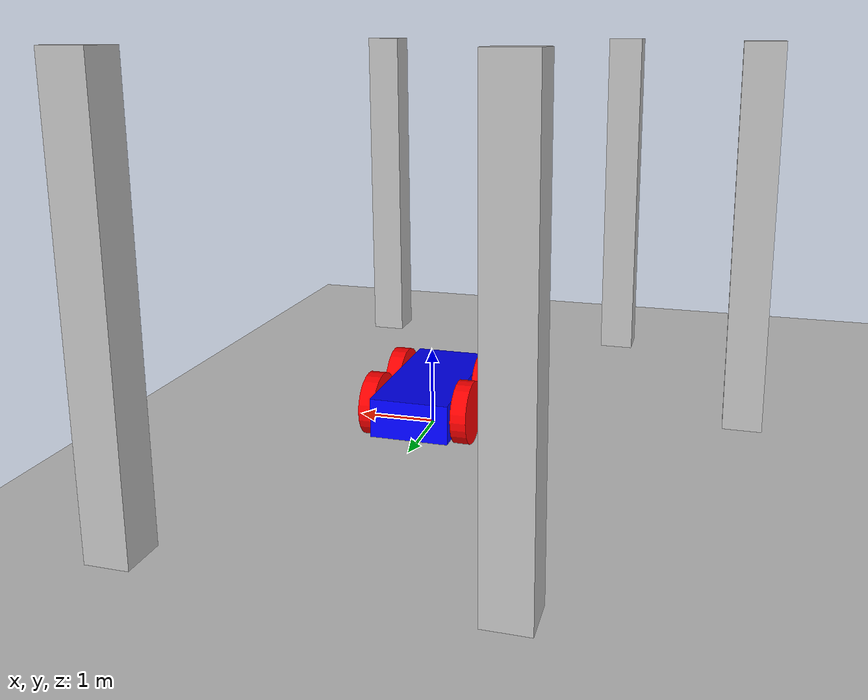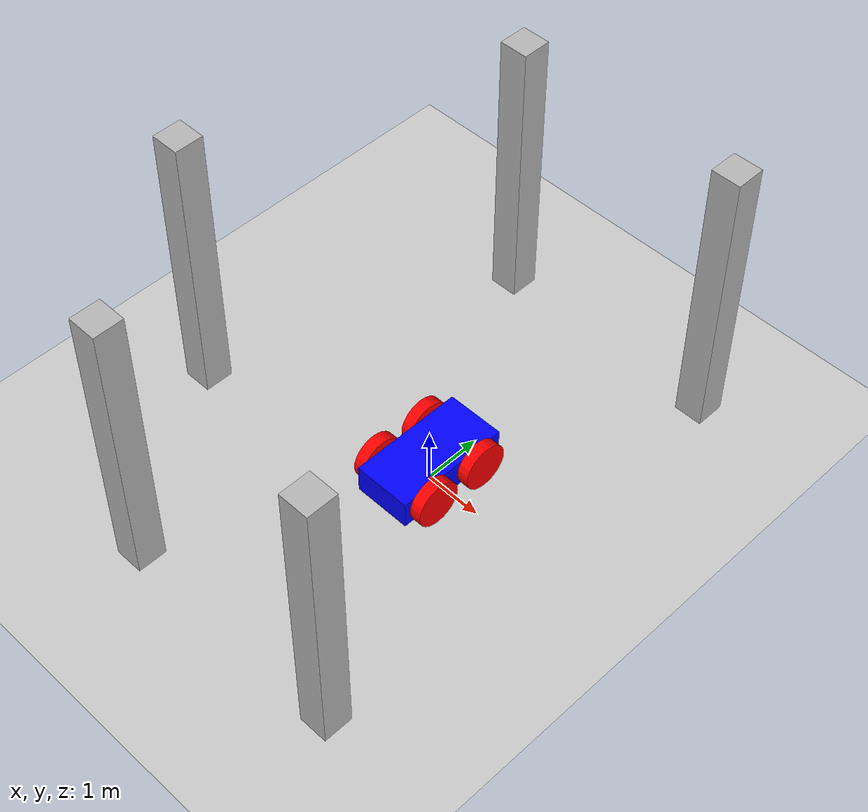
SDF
<?xml version="1.0" ?>
<sdf version="1.8">
    <world name="car_world">
        <physics name="1ms" type="ignored">
            <max_step_size>0.001</max_step_size>
            <real_time_factor>1.0</real_time_factor>
        </physics>
        <plugin
            filename="libignition-gazebo-physics-system.so"
            name="ignition::gazebo::systems::Physics">
        </plugin>
        <plugin
            filename="libignition-gazebo-user-commands-system.so"
            name="ignition::gazebo::systems::UserCommands">
        </plugin>
        <plugin
            filename="libignition-gazebo-scene-broadcaster-system.so"
            name="ignition::gazebo::systems::SceneBroadcaster">
        </plugin>
        <plugin
            filename="libignition-gazebo-imu-system.so"
            name="ignition::gazebo::systems::Imu">
        </plugin>
        <plugin
            filename="libignition-gazebo-contact-system.so"
            name="ignition::gazebo::systems::Contact">
        </plugin>
        <plugin
            filename="libignition-gazebo-sensors-system.so"
            name="ignition::gazebo::systems::Sensors">
            <render_engine>ogre2</render_engine>
        </plugin>

        <light type="directional" name="sun">
            <cast_shadows>true</cast_shadows>
            <pose>0 0 10 0 0 0</pose>
            <diffuse>0.8 0.8 0.8 1</diffuse>
            <specular>0.2 0.2 0.2 1</specular>
            <attenuation>
                <range>1000</range>
                <constant>0.9</constant>
                <linear>0.01</linear>
                <quadratic>0.001</quadratic>
            </attenuation>
            <direction>-0.5 0.1 -0.9</direction>
        </light>

        <model name="ground_plane">
            <static>true</static>
            <link name="link">
                <collision name="collision">
                    <geometry>
                        <plane>
                            <normal>0 0 1</normal>
                        </plane>
                    </geometry>
                </collision>
                <visual name="visual">
                    <geometry>
                        <plane>
                            <normal>0 0 1</normal>
                            <size>100 100</size>
                        </plane>
                    </geometry>
                    <material>
                        <ambient>0.8 0.8 0.8 1</ambient>
                        <diffuse>0.8 0.8 0.8 1</diffuse>
                        <specular>0.8 0.8 0.8 1</specular>
                    </material>
                </visual>
            </link>
        </model>

        <model name="vehicle_blue" canonical_link="chassis">
            <pose relative_to="world">0 0 0 0 0 0</pose>

            <frame name="lidar_frame" attached_to="chassis">
                <pose>0 0 0.5 0 0 0</pose>
            </frame>

            <link name="chassis">
                <pose relative_to="__model__">0 0 0.4 0 0 1.57</pose>
                <inertial>
                    <mass>1.14395</mass>
                    <inertia>
                        <ixx>0.095329</ixx>
                        <ixy>0</ixy>
                        <ixz>0</ixz>
                        <iyy>0.381317</iyy>
                        <iyz>0</iyz>
                        <izz>0.476646</izz>
                    </inertia>
                </inertial>
                <visual name="visual">
                    <geometry>
                        <box>
                            <size>2.0 1.0 0.5</size>
                        </box>
                    </geometry>
                    <material>
                        <ambient>0.0 0.0 1.0 1</ambient>
                        <diffuse>0.0 0.0 1.0 1</diffuse>
                        <specular>0.0 0.0 1.0 1</specular>
                    </material>
                </visual>
                <collision name="collision">
                    <geometry>
                        <box>
                            <size>2.0 1.0 0.5</size>
                        </box>
                    </geometry>
                </collision>
                <sensor name="imu_sensor" type="imu">
                    <always_on>1</always_on>
                    <update_rate>1</update_rate>
                    <visualize>true</visualize>
                    <topic>imu</topic>
                </sensor>
                 <sensor name="gpu_lidar" type="gpu_lidar">
                    <pose relative_to="lidar_frame">0 0 0 0 0 0</pose>
                    <topic>/scan/simulation</topic>
                    <update_rate>1</update_rate>
                    <ray>
                        <scan>
                            <horizontal>
                                <samples>640</samples>
                                <resolution>1</resolution>
                                <min_angle>-360</min_angle>
                                <max_angle>360</max_angle>
                            </horizontal>
                            <vertical>
                                <samples>1</samples>
                                <resolution>0.01</resolution>
                                <min_angle>0</min_angle>
                                <max_angle>1.5708</max_angle>
                            </vertical>
                        </scan>
                        <range>
                            <min>0.08</min>
                            <max>10.0</max>
                            <resolution>0.01</resolution>
                        </range>
                    </ray>
                </sensor>

            </link>

            <link name="right_front_wheel">
                <pose relative_to="chassis">0.5 0.6 0 -1.5707 0 0</pose>
                <visual name="visual">
                    <geometry>
                        <cylinder>
                            <radius>0.4</radius>
                            <length>0.2</length>
                        </cylinder>
                    </geometry>
                    <material>
                        <ambient>1.0 0.0 0.0 1</ambient>
                        <diffuse>1.0 0.0 0.0 1</diffuse>
                        <specular>1.0 0.0 0.0 1</specular>
                    </material>
                </visual>
                <collision name="collision">
                    <geometry>
                        <cylinder>
                            <radius>0.4</radius>
                            <length>0.2</length>
                        </cylinder>
                    </geometry>
                </collision>
            </link>

            <link name="left_front_wheel">
                <pose relative_to="chassis">-0.5 0.6 0 -1.5707 0 0</pose>
                <inertial>
                    <mass>1</mass>
                    <inertia>
                        <ixx>0.043333</ixx>
                        <ixy>0</ixy>
                        <ixz>0</ixz>
                        <iyy>0.043333</iyy>
                        <iyz>0</iyz>
                        <izz>0.08</izz>
                    </inertia>
                </inertial>
                <visual name="visual">
                    <geometry>
                        <cylinder>
                            <radius>0.4</radius>
                            <length>0.2</length>
                        </cylinder>
                    </geometry>
                    <material>
                        <ambient>1.0 0.0 0.0 1</ambient>
                        <diffuse>1.0 0.0 0.0 1</diffuse>
                        <specular>1.0 0.0 0.0 1</specular>
                    </material>
                </visual>
                <collision name="collision">
                    <geometry>
                        <cylinder>
                            <radius>0.4</radius>
                            <length>0.2</length>
                        </cylinder>
                    </geometry>
                </collision>
            </link>

            <link name="left_back_wheel">
                <pose relative_to="chassis">-0.5 -0.6 0 -1.5707 0 0</pose>
                <inertial>
                    <mass>1</mass>
                    <inertia>
                        <ixx>0.043333</ixx>
                        <ixy>0</ixy>
                        <ixz>0</ixz>
                        <iyy>0.043333</iyy>
                        <iyz>0</iyz>
                        <izz>0.08</izz>
                    </inertia>
                </inertial>
                <visual name="visual">
                    <geometry>
                        <cylinder>
                            <radius>0.4</radius>
                            <length>0.2</length>
                        </cylinder>
                    </geometry>
                    <material>
                        <ambient>1.0 0.0 0.0 1</ambient>
                        <diffuse>1.0 0.0 0.0 1</diffuse>
                        <specular>1.0 0.0 0.0 1</specular>
                    </material>
                </visual>
                <collision name="collision">
                    <geometry>
                        <cylinder>
                            <radius>0.4</radius>
                            <length>0.2</length>
                        </cylinder>
                    </geometry>
                </collision>
            </link>

            <link name="right_back_wheel">
                <pose relative_to="chassis">0.5 -0.6 0 -1.5707 0 0</pose>
                <inertial>
                    <mass>1</mass>
                    <inertia>
                        <ixx>0.043333</ixx>
                        <ixy>0</ixy>
                        <ixz>0</ixz>
                        <iyy>0.043333</iyy>
                        <iyz>0</iyz>
                        <izz>0.08</izz>
                    </inertia>
                </inertial>
                <visual name="visual">
                    <geometry>
                        <cylinder>
                            <radius>0.4</radius>
                            <length>0.2</length>
                        </cylinder>
                    </geometry>
                    <material>
                        <ambient>1.0 0.0 0.0 1</ambient>
                        <diffuse>1.0 0.0 0.0 1</diffuse>
                        <specular>1.0 0.0 0.0 1</specular>
                    </material>
                </visual>
                <collision name="collision">
                    <geometry>
                        <cylinder>
                            <radius>0.4</radius>
                            <length>0.2</length>
                        </cylinder>
                    </geometry>
                </collision>
            </link>

            <joint name="right_wheel_joint" type="revolute">
                <parent>chassis</parent>
                <child>right_front_wheel</child>
                <axis>
                    <xyz>0 0 1</xyz>
                    <limit>
                        <lower>-1.57</lower>
                        <upper>1.57</upper>
                        <effort>10</effort>
                        <velocity>5</velocity>
                    </limit>
                </axis>
            </joint>

            <joint name="left_wheel_joint" type="revolute">
                <parent>chassis</parent>
                <child>left_front_wheel</child>
                <axis>
                    <xyz>0 0 1</xyz>
                    <limit>
                        <lower>-1.57</lower>
                        <upper>1.57</upper>
                        <effort>10</effort>
                        <velocity>5</velocity>
                    </limit>
                </axis>
            </joint>

            <joint name="left_back_wheel_joint" type="revolute">
                <parent>chassis</parent>
                <child>left_back_wheel</child>
                <axis>
                    <xyz>0 0 1</xyz>
                    <limit>
                        <lower>-1.57</lower>
                        <upper>1.57</upper>
                        <effort>10</effort>
                        <velocity>5</velocity>
                    </limit>
                </axis>
            </joint>

            <joint name="right_back_wheel_joint" type="revolute">
                <parent>chassis</parent>
                <child>right_back_wheel</child>
                <axis>
                    <xyz>0 0 1</xyz>
                    <limit>
                        <lower>-1.57</lower>
                        <upper>1.57</upper>
                        <effort>10</effort>
                        <velocity>5</velocity>
                    </limit>
                </axis>
            </joint>
            <plugin
			filename="libignition-gazebo-diff-drive-system.so"
			name="ignition::gazebo::systems::DiffDrive">
			<left_joint>left_wheel_joint</left_joint>
			<right_joint>right_wheel_joint</right_joint>
			<wheel_seperation>1.2</wheel_seperation>
			<wheel_radius>0.4</wheel_radius>
			<odom_publish_frequency>1</odom_publish_frequency>
			<topic>cmd_vel</topic>
			<min_velocity>-2.0</min_velocity>
    			<max_velocity>2.0</max_velocity>
	    </plugin>
	    <plugin
			filename="libignition-gazebo-diff-drive-system.so"
			name="ignition::gazebo::systems::DiffDrive">
			<left_joint>left_back_wheel_joint</left_joint>
			<right_joint>right_back_wheel_joint</right_joint>
			<wheel_seperation>1.2</wheel_seperation>
			<wheel_radius>0.4</wheel_radius>
			<odom_publish_frequency>1</odom_publish_frequency>
			<topic>cmd_vel_back</topic>
			<min_velocity>-2.0</min_velocity>
    			<max_velocity>2.0</max_velocity>
	    </plugin>
        </model>
        <model name="Obstacle1">
	      <pose>-2 4 2.5 0 0 0</pose>
	      <link name="link">
		<collision name="collision">
		  <geometry>
		    <box>
		      <size>0.5 0.5 5.0</size>
		    </box>
		  </geometry>
		</collision>
		<visual name="visual">
		  <geometry>
		    <box>
		      <size>0.5 0.5 5.0</size>
		    </box>
		  </geometry>
		</visual>
	      </link>
    	</model>
    	<model name="Obstacle2">
	      <pose>2 4 2.5 0 0 0</pose>
	      <link name="link">
		<collision name="collision">
		  <geometry>
		    <box>
		      <size>0.5 0.5 5.0</size>
		    </box>
		  </geometry>
		</collision>
		<visual name="visual">
		  <geometry>
		    <box>
		      <size>0.5 0.5 5.0</size>
		    </box>
		  </geometry>
		</visual>
	      </link>
    	</model>
    	<model name="Obstacle3">
	      <pose>2 -4 2.5 0 0 0</pose>
	      <link name="link">
		<collision name="collision">
		  <geometry>
		    <box>
		      <size>0.5 0.5 5.0</size>
		    </box>
		  </geometry>
		</collision>
		<visual name="visual">
		  <geometry>
		    <box>
		      <size>0.5 0.5 5.0</size>
		    </box>
		  </geometry>
		</visual>
	      </link>
    	</model>
    	<model name="Obstacle4">
	      <pose>-2 -4 2.5 0 0 0</pose>
	      <link name="link">
		<collision name="collision">
		  <geometry>
		    <box>
		      <size>0.5 0.5 5.0</size>
		    </box>
		  </geometry>
		</collision>
		<visual name="visual">
		  <geometry>
		    <box>
		      <size>0.5 0.5 5.0</size>
		    </box>
		  </geometry>
		</visual>
	      </link>
    	</model>

    		<model name="Obstacle6">
	      <pose>-4 -1 2.5 0 0 0</pose>
	      <link name="link">
		<collision name="collision">
		  <geometry>
		    <box>
		      <size>0.5 0.5 5.0</size>
		    </box>
		  </geometry>
		</collision>
		<visual name="visual">
		  <geometry>
		    <box>
		      <size>0.5 0.5 5.0</size>
		    </box>
		  </geometry>
		</visual>
	      </link>
    	</model>

    </world>
</sdf>
